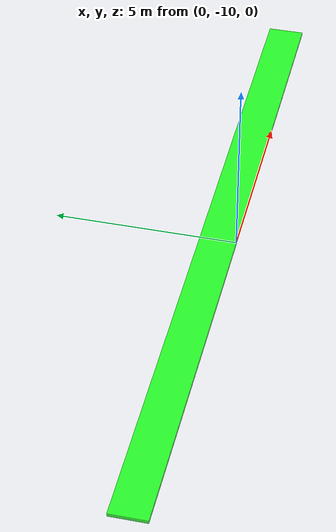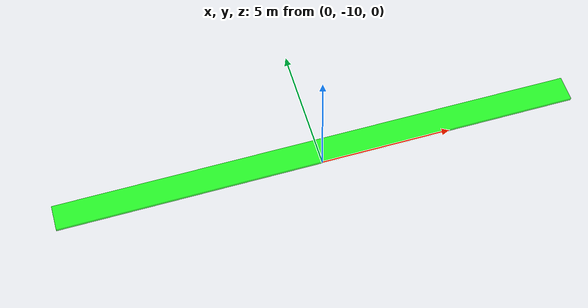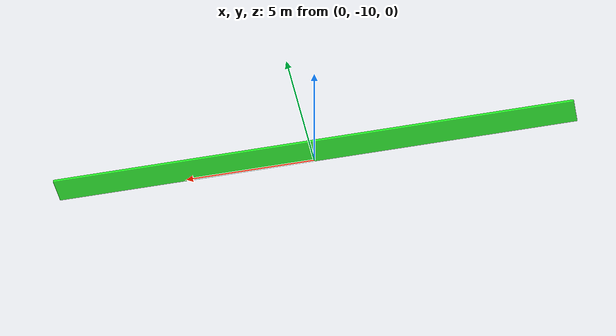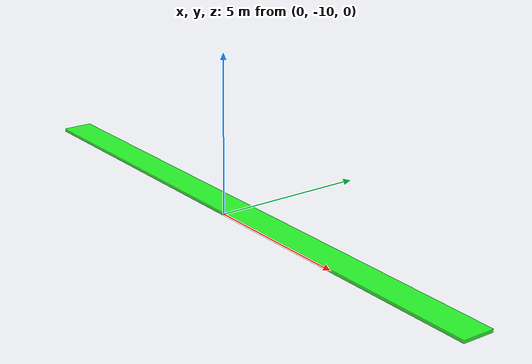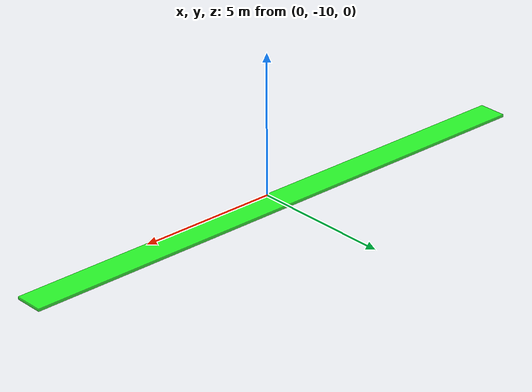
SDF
<sdf version="1.6">
  <model name="plank-10">
    <pose>0 0 0.0 0 0 0</pose>
      <link name='plank-10'>
        <pose>0 -9.5 0 0 -0 0</pose>
        <inertial>
          <mass>12000</mass>
          <inertia>
            <ixx>1010</ixx>
            <ixy>0</ixy>
            <ixz>0</ixz>
            <iyy>400010</iyy>
            <iyz>0</iyz>
            <izz>401000</izz>
          </inertia>
          <pose>0 0 0 0 -0 0</pose>
        </inertial>
        <visual name='visual'>
          <geometry>
            <box>
              <size>20 1 0.1</size>
            </box>
          </geometry>
          <material>
            <ambient>0 1 0 0.8</ambient>
            <diffuse>0 1 0 0.8</diffuse>
            <specular>0 1 0 0.8</specular>
          </material>
        </visual>
        <collision name='collision'>
          <geometry>
            <box>
              <size>20 1 0.1</size>
            </box>
          </geometry>
          <surface>
            <friction>
              <ode>
                <mu>100</mu>
                <mu2>100</mu2>
              </ode>
            </friction>
            <bounce/>
            <contact/>
          </surface>
        </collision>
        <enable_wind>false</enable_wind>
      </link>
  </model>
</sdf>
